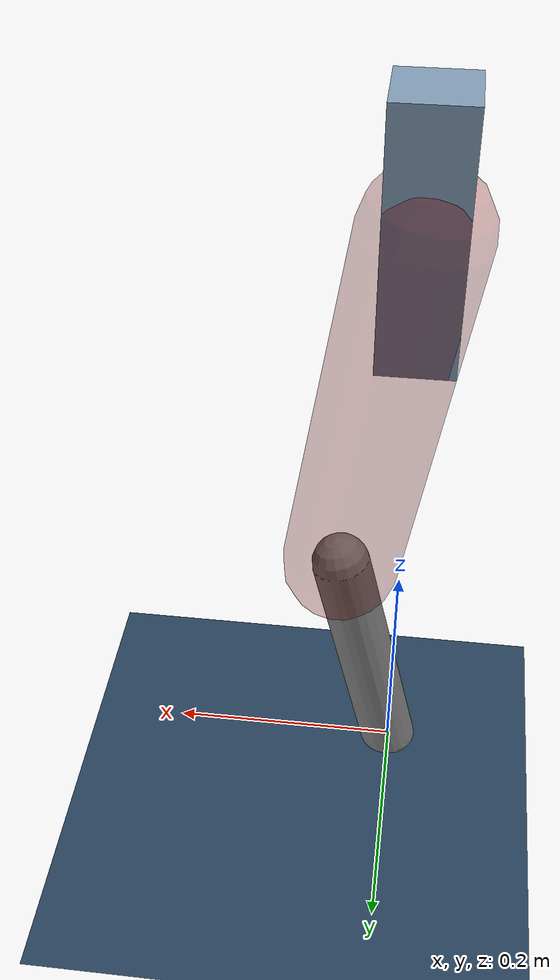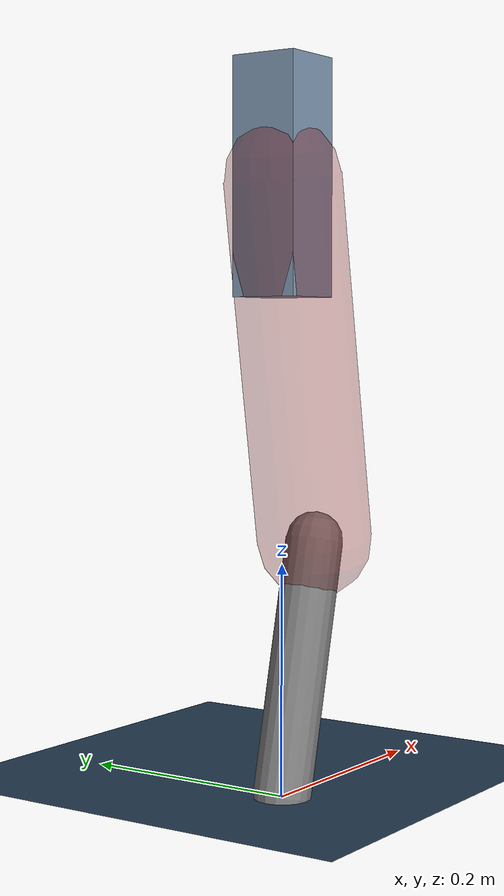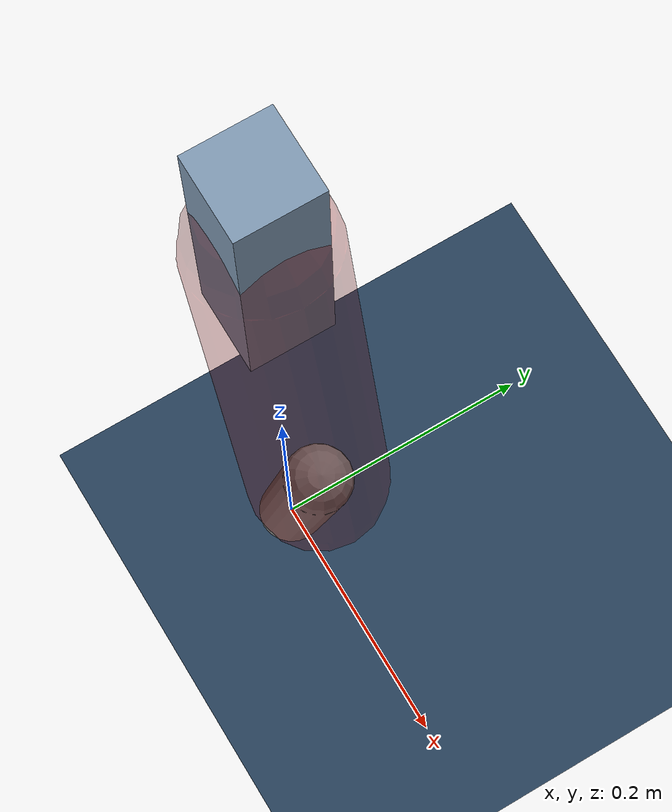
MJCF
<mujoco model="Hopper2D">
	<compiler inertiafromgeom="true" angle="radian" />
	<option timestep="0.001" integrator="implicit" cone="elliptic" solver="Newton" tolerance="1e-10" />

	<default>
		<geom contype="1" conaffinity="1" condim="3" friction="2 0.005 0.0001" solref="0.005 1" />
		<joint limited="true" damping="0.1" />
	</default>

	<asset>
		<texture name="skybox" type="skybox" builtin="gradient" rgb1=".4 .6 .8" rgb2="0 0 0" width="800" height="800" />
		<texture name="grid" type="2d" builtin="checker" rgb1=".1 .2 .3" rgb2=".2 .3 .4" width="300" height="300" mark="edge" markrgb=".2 .3 .4" />
		<material name="ground" texture="grid" texrepeat="1 1" texuniform="true" reflectance="0.1" />
		<material name="leg" rgba="0.5 0.6 0.7 1" />
	</asset>

	<worldbody>

		<geom name="floor" type="plane" size="5 5 0.25" material="ground" />

		<light directional="false" diffuse="0.8 0.8 0.8" specular="0.3 0.3 0.3" pos="0 0 2" dir="0 0 -1" />
		<light mode="targetbodycom" target="base" directional="false" diffuse="0.8 0.8 0.8" specular="0.3 0.3 0.3" pos="0 0 2" dir="0 0 -1" />

		<camera name="fixed" pos="0 -2 1" xyaxes="1 0 0 0 0 1" />
		<camera name="tracking" mode="trackcom" pos="0 -3 1" />

		<body name="root" pos="0 0 0.5263302987036786">
			<joint name="slide_x" type="slide" axis="1 0 0" range="-100 100" />
			<joint name="slide_z" type="slide" axis="0 0 1" range="0 10" />

			<body name="base" pos="0 0 0">
				<geom name="torso" type="box" size="0.03 0.03 0.1" mass="3.518" material="leg" />

				<body name="link1" pos="0 0 0" euler="0 1.4086536333000308 0">
					<joint type="hinge" axis="0 -1 0" pos="0 0 0" name="hinge1" limited="true" range="-3.14 3.14" stiffness="0" damping="0.1" />
					<geom name="thigh" type="capsule" fromto="0 0 0 0.31433089908921785 0 0" size="0.05" rgba="0.5 0 0 0.3" mass="1.0276934275408882" />

					<body name="link2" pos="0.31433089908921785 0 0" euler="0 0.3927559987770728 0">
						<joint type="hinge" axis="0 -1 0" pos="0 0 0" name="hinge2" limited="true" range="-3.14 3.14" stiffness="0" damping="0.1" />
						<geom name="shank" type="capsule" fromto="0 0 0 0.22199939961446077 0 0" size="0.025" mass="0.41929951969156865" />

					</body>
				</body>
			</body>
		</body>
	</worldbody>

	<actuator>
		<motor name="torque1" joint="hinge1" ctrlrange="-77.94014051860968 77.94014051860968" ctrllimited="true" gear="1" />
		<motor name="torque2" joint="hinge2" ctrlrange="-240.90317266560177 240.90317266560177" ctrllimited="true" gear="1" />
	</actuator>
</mujoco>
